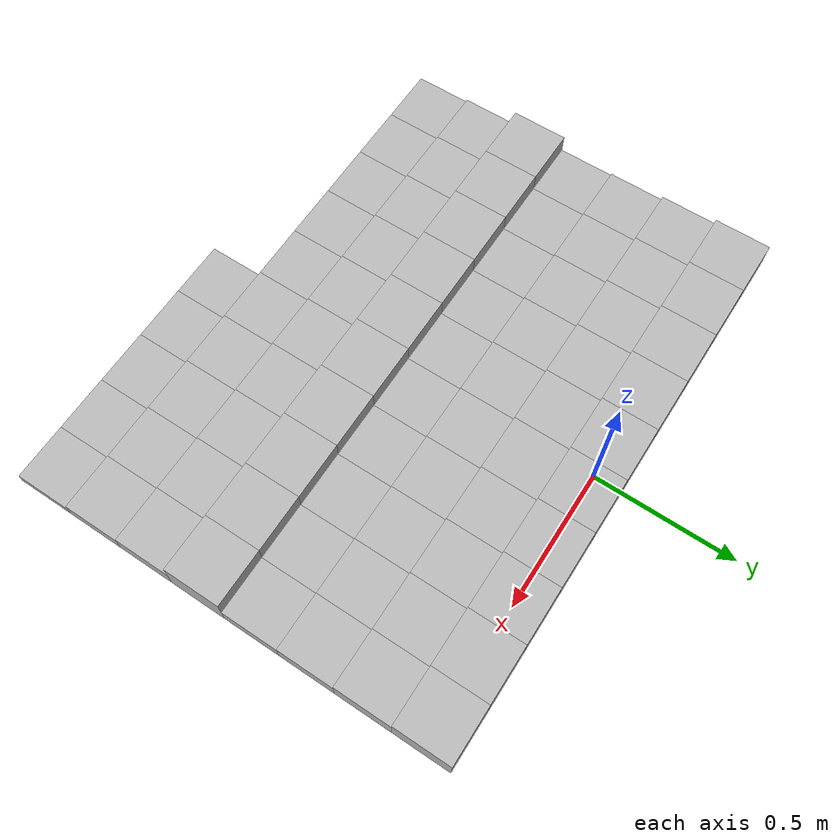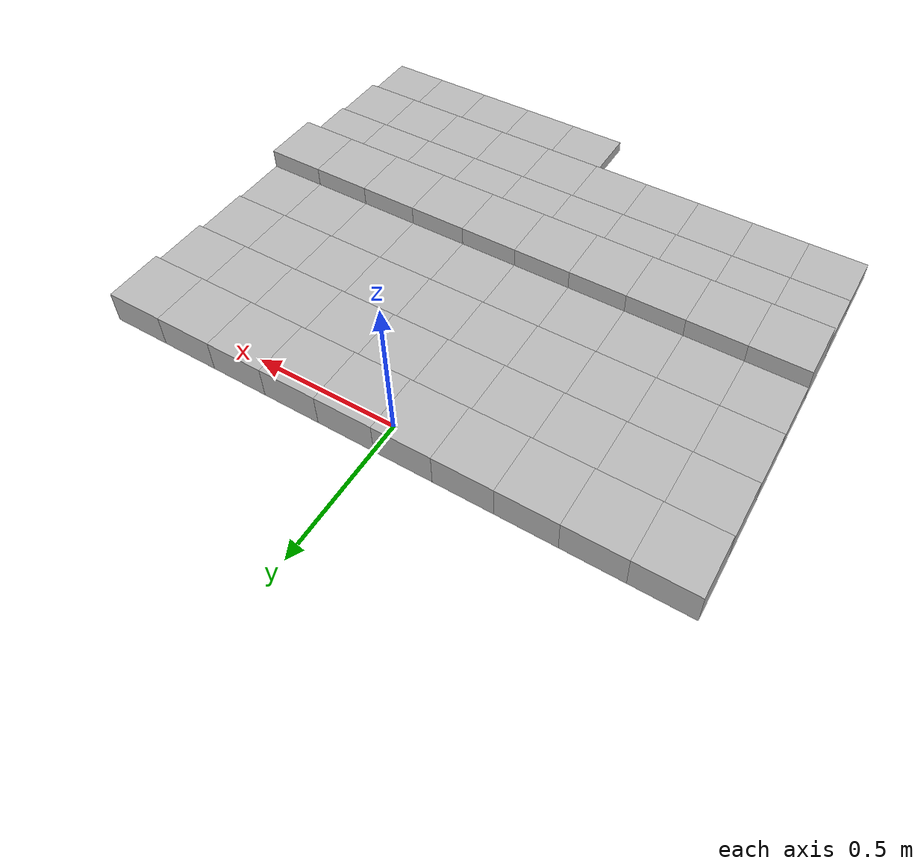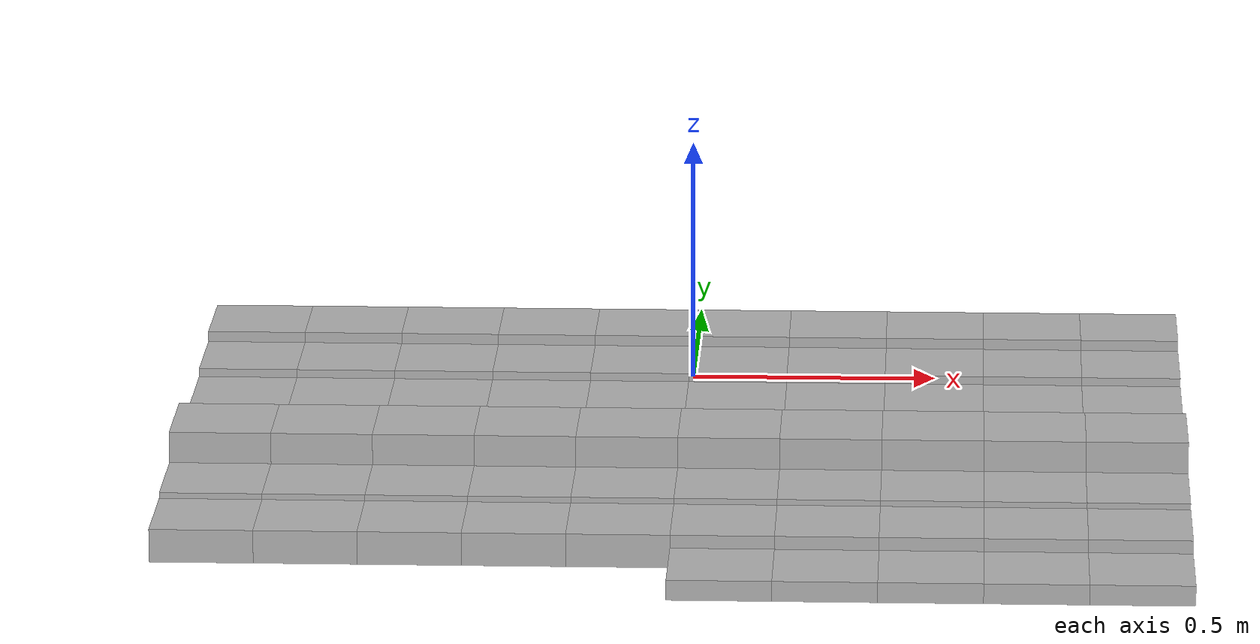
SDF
<sdf version="1.6">
 <model name="Terrain">
  <static>true</static>
  <link name="box_0_0">
   <pose>-0.9 0.0 0.05764848766 0 0 0</pose>
   <inertial>
    <mass>1.0</mass>
    <inertia><ixx>0.0</ixx><ixy>0.0</ixy><ixz>0.0</ixz><iyy>0.0</iyy><iyz>0.0</iyz><izz>0.0</izz></inertia>
   </inertial>
   <collision name="collision"><geometry><box><size>0.2 0.2 0.11529697532</size></box></geometry></collision>
   <visual name="visual"><geometry><box><size>0.2 0.2 0.11529697532</size></box></geometry></visual>
  </link>
  <link name="box_0_1">
   <pose>-0.7 0.0 0.05764848766 0 0 0</pose>
   <inertial>
    <mass>1.0</mass>
    <inertia><ixx>0.0</ixx><ixy>0.0</ixy><ixz>0.0</ixz><iyy>0.0</iyy><iyz>0.0</iyz><izz>0.0</izz></inertia>
   </inertial>
   <collision name="collision"><geometry><box><size>0.2 0.2 0.11529697532</size></box></geometry></collision>
   <visual name="visual"><geometry><box><size>0.2 0.2 0.11529697532</size></box></geometry></visual>
  </link>
  <link name="box_0_2">
   <pose>-0.5 0.0 0.05764848766 0 0 0</pose>
   <inertial>
    <mass>1.0</mass>
    <inertia><ixx>0.0</ixx><ixy>0.0</ixy><ixz>0.0</ixz><iyy>0.0</iyy><iyz>0.0</iyz><izz>0.0</izz></inertia>
   </inertial>
   <collision name="collision"><geometry><box><size>0.2 0.2 0.11529697532</size></box></geometry></collision>
   <visual name="visual"><geometry><box><size>0.2 0.2 0.11529697532</size></box></geometry></visual>
  </link>
  <link name="box_0_3">
   <pose>-0.3 0.0 0.05764848766 0 0 0</pose>
   <inertial>
    <mass>1.0</mass>
    <inertia><ixx>0.0</ixx><ixy>0.0</ixy><ixz>0.0</ixz><iyy>0.0</iyy><iyz>0.0</iyz><izz>0.0</izz></inertia>
   </inertial>
   <collision name="collision"><geometry><box><size>0.2 0.2 0.11529697532</size></box></geometry></collision>
   <visual name="visual"><geometry><box><size>0.2 0.2 0.11529697532</size></box></geometry></visual>
  </link>
  <link name="box_0_4">
   <pose>-0.1 0.0 0.05764848766 0 0 0</pose>
   <inertial>
    <mass>1.0</mass>
    <inertia><ixx>0.0</ixx><ixy>0.0</ixy><ixz>0.0</ixz><iyy>0.0</iyy><iyz>0.0</iyz><izz>0.0</izz></inertia>
   </inertial>
   <collision name="collision"><geometry><box><size>0.2 0.2 0.11529697532</size></box></geometry></collision>
   <visual name="visual"><geometry><box><size>0.2 0.2 0.11529697532</size></box></geometry></visual>
  </link>
  <link name="box_0_5">
   <pose>0.1 0.0 0.05764848766 0 0 0</pose>
   <inertial>
    <mass>1.0</mass>
    <inertia><ixx>0.0</ixx><ixy>0.0</ixy><ixz>0.0</ixz><iyy>0.0</iyy><iyz>0.0</iyz><izz>0.0</izz></inertia>
   </inertial>
   <collision name="collision"><geometry><box><size>0.2 0.2 0.11529697532</size></box></geometry></collision>
   <visual name="visual"><geometry><box><size>0.2 0.2 0.11529697532</size></box></geometry></visual>
  </link>
  <link name="box_0_6">
   <pose>0.3 0.0 0.05764848766 0 0 0</pose>
   <inertial>
    <mass>1.0</mass>
    <inertia><ixx>0.0</ixx><ixy>0.0</ixy><ixz>0.0</ixz><iyy>0.0</iyy><iyz>0.0</iyz><izz>0.0</izz></inertia>
   </inertial>
   <collision name="collision"><geometry><box><size>0.2 0.2 0.11529697532</size></box></geometry></collision>
   <visual name="visual"><geometry><box><size>0.2 0.2 0.11529697532</size></box></geometry></visual>
  </link>
  <link name="box_0_7">
   <pose>0.5 0.0 0.05764848766 0 0 0</pose>
   <inertial>
    <mass>1.0</mass>
    <inertia><ixx>0.0</ixx><ixy>0.0</ixy><ixz>0.0</ixz><iyy>0.0</iyy><iyz>0.0</iyz><izz>0.0</izz></inertia>
   </inertial>
   <collision name="collision"><geometry><box><size>0.2 0.2 0.11529697532</size></box></geometry></collision>
   <visual name="visual"><geometry><box><size>0.2 0.2 0.11529697532</size></box></geometry></visual>
  </link>
  <link name="box_0_8">
   <pose>0.7 0.0 0.05764848766 0 0 0</pose>
   <inertial>
    <mass>1.0</mass>
    <inertia><ixx>0.0</ixx><ixy>0.0</ixy><ixz>0.0</ixz><iyy>0.0</iyy><iyz>0.0</iyz><izz>0.0</izz></inertia>
   </inertial>
   <collision name="collision"><geometry><box><size>0.2 0.2 0.11529697532</size></box></geometry></collision>
   <visual name="visual"><geometry><box><size>0.2 0.2 0.11529697532</size></box></geometry></visual>
  </link>
  <link name="box_0_9">
   <pose>0.9 0.0 0.05764848766 0 0 0</pose>
   <inertial>
    <mass>1.0</mass>
    <inertia><ixx>0.0</ixx><ixy>0.0</ixy><ixz>0.0</ixz><iyy>0.0</iyy><iyz>0.0</iyz><izz>0.0</izz></inertia>
   </inertial>
   <collision name="collision"><geometry><box><size>0.2 0.2 0.11529697532</size></box></geometry></collision>
   <visual name="visual"><geometry><box><size>0.2 0.2 0.11529697532</size></box></geometry></visual>
  </link>
  <link name="box_1_0">
   <pose>-0.9 -0.2 0.0469387882455 0 0 0</pose>
   <inertial>
    <mass>1.0</mass>
    <inertia><ixx>0.0</ixx><ixy>0.0</ixy><ixz>0.0</ixz><iyy>0.0</iyy><iyz>0.0</iyz><izz>0.0</izz></inertia>
   </inertial>
   <collision name="collision"><geometry><box><size>0.2 0.2 0.093877576491</size></box></geometry></collision>
   <visual name="visual"><geometry><box><size>0.2 0.2 0.093877576491</size></box></geometry></visual>
  </link>
  <link name="box_1_1">
   <pose>-0.7 -0.2 0.0469387882455 0 0 0</pose>
   <inertial>
    <mass>1.0</mass>
    <inertia><ixx>0.0</ixx><ixy>0.0</ixy><ixz>0.0</ixz><iyy>0.0</iyy><iyz>0.0</iyz><izz>0.0</izz></inertia>
   </inertial>
   <collision name="collision"><geometry><box><size>0.2 0.2 0.093877576491</size></box></geometry></collision>
   <visual name="visual"><geometry><box><size>0.2 0.2 0.093877576491</size></box></geometry></visual>
  </link>
  <link name="box_1_2">
   <pose>-0.5 -0.2 0.0469387882455 0 0 0</pose>
   <inertial>
    <mass>1.0</mass>
    <inertia><ixx>0.0</ixx><ixy>0.0</ixy><ixz>0.0</ixz><iyy>0.0</iyy><iyz>0.0</iyz><izz>0.0</izz></inertia>
   </inertial>
   <collision name="collision"><geometry><box><size>0.2 0.2 0.093877576491</size></box></geometry></collision>
   <visual name="visual"><geometry><box><size>0.2 0.2 0.093877576491</size></box></geometry></visual>
  </link>
  <link name="box_1_3">
   <pose>-0.3 -0.2 0.0469387882455 0 0 0</pose>
   <inertial>
    <mass>1.0</mass>
    <inertia><ixx>0.0</ixx><ixy>0.0</ixy><ixz>0.0</ixz><iyy>0.0</iyy><iyz>0.0</iyz><izz>0.0</izz></inertia>
   </inertial>
   <collision name="collision"><geometry><box><size>0.2 0.2 0.093877576491</size></box></geometry></collision>
   <visual name="visual"><geometry><box><size>0.2 0.2 0.093877576491</size></box></geometry></visual>
  </link>
  <link name="box_1_4">
   <pose>-0.1 -0.2 0.0469387882455 0 0 0</pose>
   <inertial>
    <mass>1.0</mass>
    <inertia><ixx>0.0</ixx><ixy>0.0</ixy><ixz>0.0</ixz><iyy>0.0</iyy><iyz>0.0</iyz><izz>0.0</izz></inertia>
   </inertial>
   <collision name="collision"><geometry><box><size>0.2 0.2 0.093877576491</size></box></geometry></collision>
   <visual name="visual"><geometry><box><size>0.2 0.2 0.093877576491</size></box></geometry></visual>
  </link>
  <link name="box_1_5">
   <pose>0.1 -0.2 0.0469387882455 0 0 0</pose>
   <inertial>
    <mass>1.0</mass>
    <inertia><ixx>0.0</ixx><ixy>0.0</ixy><ixz>0.0</ixz><iyy>0.0</iyy><iyz>0.0</iyz><izz>0.0</izz></inertia>
   </inertial>
   <collision name="collision"><geometry><box><size>0.2 0.2 0.093877576491</size></box></geometry></collision>
   <visual name="visual"><geometry><box><size>0.2 0.2 0.093877576491</size></box></geometry></visual>
  </link>
  <link name="box_1_6">
   <pose>0.3 -0.2 0.0469387882455 0 0 0</pose>
   <inertial>
    <mass>1.0</mass>
    <inertia><ixx>0.0</ixx><ixy>0.0</ixy><ixz>0.0</ixz><iyy>0.0</iyy><iyz>0.0</iyz><izz>0.0</izz></inertia>
   </inertial>
   <collision name="collision"><geometry><box><size>0.2 0.2 0.093877576491</size></box></geometry></collision>
   <visual name="visual"><geometry><box><size>0.2 0.2 0.093877576491</size></box></geometry></visual>
  </link>
  <link name="box_1_7">
   <pose>0.5 -0.2 0.0469387882455 0 0 0</pose>
   <inertial>
    <mass>1.0</mass>
    <inertia><ixx>0.0</ixx><ixy>0.0</ixy><ixz>0.0</ixz><iyy>0.0</iyy><iyz>0.0</iyz><izz>0.0</izz></inertia>
   </inertial>
   <collision name="collision"><geometry><box><size>0.2 0.2 0.093877576491</size></box></geometry></collision>
   <visual name="visual"><geometry><box><size>0.2 0.2 0.093877576491</size></box></geometry></visual>
  </link>
  <link name="box_1_8">
   <pose>0.7 -0.2 0.0469387882455 0 0 0</pose>
   <inertial>
    <mass>1.0</mass>
    <inertia><ixx>0.0</ixx><ixy>0.0</ixy><ixz>0.0</ixz><iyy>0.0</iyy><iyz>0.0</iyz><izz>0.0</izz></inertia>
   </inertial>
   <collision name="collision"><geometry><box><size>0.2 0.2 0.093877576491</size></box></geometry></collision>
   <visual name="visual"><geometry><box><size>0.2 0.2 0.093877576491</size></box></geometry></visual>
  </link>
  <link name="box_1_9">
   <pose>0.9 -0.2 0.0469387882455 0 0 0</pose>
   <inertial>
    <mass>1.0</mass>
    <inertia><ixx>0.0</ixx><ixy>0.0</ixy><ixz>0.0</ixz><iyy>0.0</iyy><iyz>0.0</iyz><izz>0.0</izz></inertia>
   </inertial>
   <collision name="collision"><geometry><box><size>0.2 0.2 0.093877576491</size></box></geometry></collision>
   <visual name="visual"><geometry><box><size>0.2 0.2 0.093877576491</size></box></geometry></visual>
  </link>
  <link name="box_2_0">
   <pose>-0.9 -0.4 0.0385194099857 0 0 0</pose>
   <inertial>
    <mass>1.0</mass>
    <inertia><ixx>0.0</ixx><ixy>0.0</ixy><ixz>0.0</ixz><iyy>0.0</iyy><iyz>0.0</iyz><izz>0.0</izz></inertia>
   </inertial>
   <collision name="collision"><geometry><box><size>0.2 0.2 0.0770388199713</size></box></geometry></collision>
   <visual name="visual"><geometry><box><size>0.2 0.2 0.0770388199713</size></box></geometry></visual>
  </link>
  <link name="box_2_1">
   <pose>-0.7 -0.4 0.0385194099857 0 0 0</pose>
   <inertial>
    <mass>1.0</mass>
    <inertia><ixx>0.0</ixx><ixy>0.0</ixy><ixz>0.0</ixz><iyy>0.0</iyy><iyz>0.0</iyz><izz>0.0</izz></inertia>
   </inertial>
   <collision name="collision"><geometry><box><size>0.2 0.2 0.0770388199713</size></box></geometry></collision>
   <visual name="visual"><geometry><box><size>0.2 0.2 0.0770388199713</size></box></geometry></visual>
  </link>
  <link name="box_2_2">
   <pose>-0.5 -0.4 0.0385194099857 0 0 0</pose>
   <inertial>
    <mass>1.0</mass>
    <inertia><ixx>0.0</ixx><ixy>0.0</ixy><ixz>0.0</ixz><iyy>0.0</iyy><iyz>0.0</iyz><izz>0.0</izz></inertia>
   </inertial>
   <collision name="collision"><geometry><box><size>0.2 0.2 0.0770388199713</size></box></geometry></collision>
   <visual name="visual"><geometry><box><size>0.2 0.2 0.0770388199713</size></box></geometry></visual>
  </link>
  <link name="box_2_3">
   <pose>-0.3 -0.4 0.0385194099857 0 0 0</pose>
   <inertial>
    <mass>1.0</mass>
    <inertia><ixx>0.0</ixx><ixy>0.0</ixy><ixz>0.0</ixz><iyy>0.0</iyy><iyz>0.0</iyz><izz>0.0</izz></inertia>
   </inertial>
   <collision name="collision"><geometry><box><size>0.2 0.2 0.0770388199713</size></box></geometry></collision>
   <visual name="visual"><geometry><box><size>0.2 0.2 0.0770388199713</size></box></geometry></visual>
  </link>
  <link name="box_2_4">
   <pose>-0.1 -0.4 0.0385194099857 0 0 0</pose>
   <inertial>
    <mass>1.0</mass>
    <inertia><ixx>0.0</ixx><ixy>0.0</ixy><ixz>0.0</ixz><iyy>0.0</iyy><iyz>0.0</iyz><izz>0.0</izz></inertia>
   </inertial>
   <collision name="collision"><geometry><box><size>0.2 0.2 0.0770388199713</size></box></geometry></collision>
   <visual name="visual"><geometry><box><size>0.2 0.2 0.0770388199713</size></box></geometry></visual>
  </link>
  <link name="box_2_5">
   <pose>0.1 -0.4 0.0385194099857 0 0 0</pose>
   <inertial>
    <mass>1.0</mass>
    <inertia><ixx>0.0</ixx><ixy>0.0</ixy><ixz>0.0</ixz><iyy>0.0</iyy><iyz>0.0</iyz><izz>0.0</izz></inertia>
   </inertial>
   <collision name="collision"><geometry><box><size>0.2 0.2 0.0770388199713</size></box></geometry></collision>
   <visual name="visual"><geometry><box><size>0.2 0.2 0.0770388199713</size></box></geometry></visual>
  </link>
  <link name="box_2_6">
   <pose>0.3 -0.4 0.0385194099857 0 0 0</pose>
   <inertial>
    <mass>1.0</mass>
    <inertia><ixx>0.0</ixx><ixy>0.0</ixy><ixz>0.0</ixz><iyy>0.0</iyy><iyz>0.0</iyz><izz>0.0</izz></inertia>
   </inertial>
   <collision name="collision"><geometry><box><size>0.2 0.2 0.0770388199713</size></box></geometry></collision>
   <visual name="visual"><geometry><box><size>0.2 0.2 0.0770388199713</size></box></geometry></visual>
  </link>
  <link name="box_2_7">
   <pose>0.5 -0.4 0.0385194099857 0 0 0</pose>
   <inertial>
    <mass>1.0</mass>
    <inertia><ixx>0.0</ixx><ixy>0.0</ixy><ixz>0.0</ixz><iyy>0.0</iyy><iyz>0.0</iyz><izz>0.0</izz></inertia>
   </inertial>
   <collision name="collision"><geometry><box><size>0.2 0.2 0.0770388199713</size></box></geometry></collision>
   <visual name="visual"><geometry><box><size>0.2 0.2 0.0770388199713</size></box></geometry></visual>
  </link>
  <link name="box_2_8">
   <pose>0.7 -0.4 0.0385194099857 0 0 0</pose>
   <inertial>
    <mass>1.0</mass>
    <inertia><ixx>0.0</ixx><ixy>0.0</ixy><ixz>0.0</ixz><iyy>0.0</iyy><iyz>0.0</iyz><izz>0.0</izz></inertia>
   </inertial>
   <collision name="collision"><geometry><box><size>0.2 0.2 0.0770388199713</size></box></geometry></collision>
   <visual name="visual"><geometry><box><size>0.2 0.2 0.0770388199713</size></box></geometry></visual>
  </link>
  <link name="box_2_9">
   <pose>0.9 -0.4 0.0385194099857 0 0 0</pose>
   <inertial>
    <mass>1.0</mass>
    <inertia><ixx>0.0</ixx><ixy>0.0</ixy><ixz>0.0</ixz><iyy>0.0</iyy><iyz>0.0</iyz><izz>0.0</izz></inertia>
   </inertial>
   <collision name="collision"><geometry><box><size>0.2 0.2 0.0770388199713</size></box></geometry></collision>
   <visual name="visual"><geometry><box><size>0.2 0.2 0.0770388199713</size></box></geometry></visual>
  </link>
  <link name="box_3_0">
   <pose>-0.9 -0.6 0.0346947732556 0 0 0</pose>
   <inertial>
    <mass>1.0</mass>
    <inertia><ixx>0.0</ixx><ixy>0.0</ixy><ixz>0.0</ixz><iyy>0.0</iyy><iyz>0.0</iyz><izz>0.0</izz></inertia>
   </inertial>
   <collision name="collision"><geometry><box><size>0.2 0.2 0.0693895465111</size></box></geometry></collision>
   <visual name="visual"><geometry><box><size>0.2 0.2 0.0693895465111</size></box></geometry></visual>
  </link>
  <link name="box_3_1">
   <pose>-0.7 -0.6 0.0346947732556 0 0 0</pose>
   <inertial>
    <mass>1.0</mass>
    <inertia><ixx>0.0</ixx><ixy>0.0</ixy><ixz>0.0</ixz><iyy>0.0</iyy><iyz>0.0</iyz><izz>0.0</izz></inertia>
   </inertial>
   <collision name="collision"><geometry><box><size>0.2 0.2 0.0693895465111</size></box></geometry></collision>
   <visual name="visual"><geometry><box><size>0.2 0.2 0.0693895465111</size></box></geometry></visual>
  </link>
  <link name="box_3_2">
   <pose>-0.5 -0.6 0.0346947732556 0 0 0</pose>
   <inertial>
    <mass>1.0</mass>
    <inertia><ixx>0.0</ixx><ixy>0.0</ixy><ixz>0.0</ixz><iyy>0.0</iyy><iyz>0.0</iyz><izz>0.0</izz></inertia>
   </inertial>
   <collision name="collision"><geometry><box><size>0.2 0.2 0.0693895465111</size></box></geometry></collision>
   <visual name="visual"><geometry><box><size>0.2 0.2 0.0693895465111</size></box></geometry></visual>
  </link>
  <link name="box_3_3">
   <pose>-0.3 -0.6 0.0346947732556 0 0 0</pose>
   <inertial>
    <mass>1.0</mass>
    <inertia><ixx>0.0</ixx><ixy>0.0</ixy><ixz>0.0</ixz><iyy>0.0</iyy><iyz>0.0</iyz><izz>0.0</izz></inertia>
   </inertial>
   <collision name="collision"><geometry><box><size>0.2 0.2 0.0693895465111</size></box></geometry></collision>
   <visual name="visual"><geometry><box><size>0.2 0.2 0.0693895465111</size></box></geometry></visual>
  </link>
  <link name="box_3_4">
   <pose>-0.1 -0.6 0.0346947732556 0 0 0</pose>
   <inertial>
    <mass>1.0</mass>
    <inertia><ixx>0.0</ixx><ixy>0.0</ixy><ixz>0.0</ixz><iyy>0.0</iyy><iyz>0.0</iyz><izz>0.0</izz></inertia>
   </inertial>
   <collision name="collision"><geometry><box><size>0.2 0.2 0.0693895465111</size></box></geometry></collision>
   <visual name="visual"><geometry><box><size>0.2 0.2 0.0693895465111</size></box></geometry></visual>
  </link>
  <link name="box_3_5">
   <pose>0.1 -0.6 0.0346947732556 0 0 0</pose>
   <inertial>
    <mass>1.0</mass>
    <inertia><ixx>0.0</ixx><ixy>0.0</ixy><ixz>0.0</ixz><iyy>0.0</iyy><iyz>0.0</iyz><izz>0.0</izz></inertia>
   </inertial>
   <collision name="collision"><geometry><box><size>0.2 0.2 0.0693895465111</size></box></geometry></collision>
   <visual name="visual"><geometry><box><size>0.2 0.2 0.0693895465111</size></box></geometry></visual>
  </link>
  <link name="box_3_6">
   <pose>0.3 -0.6 0.0346947732556 0 0 0</pose>
   <inertial>
    <mass>1.0</mass>
    <inertia><ixx>0.0</ixx><ixy>0.0</ixy><ixz>0.0</ixz><iyy>0.0</iyy><iyz>0.0</iyz><izz>0.0</izz></inertia>
   </inertial>
   <collision name="collision"><geometry><box><size>0.2 0.2 0.0693895465111</size></box></geometry></collision>
   <visual name="visual"><geometry><box><size>0.2 0.2 0.0693895465111</size></box></geometry></visual>
  </link>
  <link name="box_3_7">
   <pose>0.5 -0.6 0.0346947732556 0 0 0</pose>
   <inertial>
    <mass>1.0</mass>
    <inertia><ixx>0.0</ixx><ixy>0.0</ixy><ixz>0.0</ixz><iyy>0.0</iyy><iyz>0.0</iyz><izz>0.0</izz></inertia>
   </inertial>
   <collision name="collision"><geometry><box><size>0.2 0.2 0.0693895465111</size></box></geometry></collision>
   <visual name="visual"><geometry><box><size>0.2 0.2 0.0693895465111</size></box></geometry></visual>
  </link>
  <link name="box_3_8">
   <pose>0.7 -0.6 0.0346947732556 0 0 0</pose>
   <inertial>
    <mass>1.0</mass>
    <inertia><ixx>0.0</ixx><ixy>0.0</ixy><ixz>0.0</ixz><iyy>0.0</iyy><iyz>0.0</iyz><izz>0.0</izz></inertia>
   </inertial>
   <collision name="collision"><geometry><box><size>0.2 0.2 0.0693895465111</size></box></geometry></collision>
   <visual name="visual"><geometry><box><size>0.2 0.2 0.0693895465111</size></box></geometry></visual>
  </link>
  <link name="box_3_9">
   <pose>0.9 -0.6 0.0346947732556 0 0 0</pose>
   <inertial>
    <mass>1.0</mass>
    <inertia><ixx>0.0</ixx><ixy>0.0</ixy><ixz>0.0</ixz><iyy>0.0</iyy><iyz>0.0</iyz><izz>0.0</izz></inertia>
   </inertial>
   <collision name="collision"><geometry><box><size>0.2 0.2 0.0693895465111</size></box></geometry></collision>
   <visual name="visual"><geometry><box><size>0.2 0.2 0.0693895465111</size></box></geometry></visual>
  </link>
  <link name="box_4_0">
   <pose>-0.9 -0.8 0.069619516451 0 0 0</pose>
   <inertial>
    <mass>1.0</mass>
    <inertia><ixx>0.0</ixx><ixy>0.0</ixy><ixz>0.0</ixz><iyy>0.0</iyy><iyz>0.0</iyz><izz>0.0</izz></inertia>
   </inertial>
   <collision name="collision"><geometry><box><size>0.2 0.2 0.139239032902</size></box></geometry></collision>
   <visual name="visual"><geometry><box><size>0.2 0.2 0.139239032902</size></box></geometry></visual>
  </link>
  <link name="box_4_1">
   <pose>-0.7 -0.8 0.069619516451 0 0 0</pose>
   <inertial>
    <mass>1.0</mass>
    <inertia><ixx>0.0</ixx><ixy>0.0</ixy><ixz>0.0</ixz><iyy>0.0</iyy><iyz>0.0</iyz><izz>0.0</izz></inertia>
   </inertial>
   <collision name="collision"><geometry><box><size>0.2 0.2 0.139239032902</size></box></geometry></collision>
   <visual name="visual"><geometry><box><size>0.2 0.2 0.139239032902</size></box></geometry></visual>
  </link>
  <link name="box_4_2">
   <pose>-0.5 -0.8 0.069619516451 0 0 0</pose>
   <inertial>
    <mass>1.0</mass>
    <inertia><ixx>0.0</ixx><ixy>0.0</ixy><ixz>0.0</ixz><iyy>0.0</iyy><iyz>0.0</iyz><izz>0.0</izz></inertia>
   </inertial>
   <collision name="collision"><geometry><box><size>0.2 0.2 0.139239032902</size></box></geometry></collision>
   <visual name="visual"><geometry><box><size>0.2 0.2 0.139239032902</size></box></geometry></visual>
  </link>
  <link name="box_4_3">
   <pose>-0.3 -0.8 0.069619516451 0 0 0</pose>
   <inertial>
    <mass>1.0</mass>
    <inertia><ixx>0.0</ixx><ixy>0.0</ixy><ixz>0.0</ixz><iyy>0.0</iyy><iyz>0.0</iyz><izz>0.0</izz></inertia>
   </inertial>
   <collision name="collision"><geometry><box><size>0.2 0.2 0.139239032902</size></box></geometry></collision>
   <visual name="visual"><geometry><box><size>0.2 0.2 0.139239032902</size></box></geometry></visual>
  </link>
  <link name="box_4_4">
   <pose>-0.1 -0.8 0.069619516451 0 0 0</pose>
   <inertial>
    <mass>1.0</mass>
    <inertia><ixx>0.0</ixx><ixy>0.0</ixy><ixz>0.0</ixz><iyy>0.0</iyy><iyz>0.0</iyz><izz>0.0</izz></inertia>
   </inertial>
   <collision name="collision"><geometry><box><size>0.2 0.2 0.139239032902</size></box></geometry></collision>
   <visual name="visual"><geometry><box><size>0.2 0.2 0.139239032902</size></box></geometry></visual>
  </link>
  <link name="box_4_5">
   <pose>0.1 -0.8 0.069619516451 0 0 0</pose>
   <inertial>
    <mass>1.0</mass>
    <inertia><ixx>0.0</ixx><ixy>0.0</ixy><ixz>0.0</ixz><iyy>0.0</iyy><iyz>0.0</iyz><izz>0.0</izz></inertia>
   </inertial>
   <collision name="collision"><geometry><box><size>0.2 0.2 0.139239032902</size></box></geometry></collision>
   <visual name="visual"><geometry><box><size>0.2 0.2 0.139239032902</size></box></geometry></visual>
  </link>
  <link name="box_4_6">
   <pose>0.3 -0.8 0.069619516451 0 0 0</pose>
   <inertial>
    <mass>1.0</mass>
    <inertia><ixx>0.0</ixx><ixy>0.0</ixy><ixz>0.0</ixz><iyy>0.0</iyy><iyz>0.0</iyz><izz>0.0</izz></inertia>
   </inertial>
   <collision name="collision"><geometry><box><size>0.2 0.2 0.139239032902</size></box></geometry></collision>
   <visual name="visual"><geometry><box><size>0.2 0.2 0.139239032902</size></box></geometry></visual>
  </link>
  <link name="box_4_7">
   <pose>0.5 -0.8 0.069619516451 0 0 0</pose>
   <inertial>
    <mass>1.0</mass>
    <inertia><ixx>0.0</ixx><ixy>0.0</ixy><ixz>0.0</ixz><iyy>0.0</iyy><iyz>0.0</iyz><izz>0.0</izz></inertia>
   </inertial>
   <collision name="collision"><geometry><box><size>0.2 0.2 0.139239032902</size></box></geometry></collision>
   <visual name="visual"><geometry><box><size>0.2 0.2 0.139239032902</size></box></geometry></visual>
  </link>
  <link name="box_4_8">
   <pose>0.7 -0.8 0.069619516451 0 0 0</pose>
   <inertial>
    <mass>1.0</mass>
    <inertia><ixx>0.0</ixx><ixy>0.0</ixy><ixz>0.0</ixz><iyy>0.0</iyy><iyz>0.0</iyz><izz>0.0</izz></inertia>
   </inertial>
   <collision name="collision"><geometry><box><size>0.2 0.2 0.139239032902</size></box></geometry></collision>
   <visual name="visual"><geometry><box><size>0.2 0.2 0.139239032902</size></box></geometry></visual>
  </link>
  <link name="box_4_9">
   <pose>0.9 -0.8 0.069619516451 0 0 0</pose>
   <inertial>
    <mass>1.0</mass>
    <inertia><ixx>0.0</ixx><ixy>0.0</ixy><ixz>0.0</ixz><iyy>0.0</iyy><iyz>0.0</iyz><izz>0.0</izz></inertia>
   </inertial>
   <collision name="collision"><geometry><box><size>0.2 0.2 0.139239032902</size></box></geometry></collision>
   <visual name="visual"><geometry><box><size>0.2 0.2 0.139239032902</size></box></geometry></visual>
  </link>
  <link name="box_5_0">
   <pose>-0.9 -1.0 0.0385689815721 0 0 0</pose>
   <inertial>
    <mass>1.0</mass>
    <inertia><ixx>0.0</ixx><ixy>0.0</ixy><ixz>0.0</ixz><iyy>0.0</iyy><iyz>0.0</iyz><izz>0.0</izz></inertia>
   </inertial>
   <collision name="collision"><geometry><box><size>0.2 0.2 0.0771379631443</size></box></geometry></collision>
   <visual name="visual"><geometry><box><size>0.2 0.2 0.0771379631443</size></box></geometry></visual>
  </link>
  <link name="box_5_1">
   <pose>-0.7 -1.0 0.0385689815721 0 0 0</pose>
   <inertial>
    <mass>1.0</mass>
    <inertia><ixx>0.0</ixx><ixy>0.0</ixy><ixz>0.0</ixz><iyy>0.0</iyy><iyz>0.0</iyz><izz>0.0</izz></inertia>
   </inertial>
   <collision name="collision"><geometry><box><size>0.2 0.2 0.0771379631443</size></box></geometry></collision>
   <visual name="visual"><geometry><box><size>0.2 0.2 0.0771379631443</size></box></geometry></visual>
  </link>
  <link name="box_5_2">
   <pose>-0.5 -1.0 0.0385689815721 0 0 0</pose>
   <inertial>
    <mass>1.0</mass>
    <inertia><ixx>0.0</ixx><ixy>0.0</ixy><ixz>0.0</ixz><iyy>0.0</iyy><iyz>0.0</iyz><izz>0.0</izz></inertia>
   </inertial>
   <collision name="collision"><geometry><box><size>0.2 0.2 0.0771379631443</size></box></geometry></collision>
   <visual name="visual"><geometry><box><size>0.2 0.2 0.0771379631443</size></box></geometry></visual>
  </link>
  <link name="box_5_3">
   <pose>-0.3 -1.0 0.0385689815721 0 0 0</pose>
   <inertial>
    <mass>1.0</mass>
    <inertia><ixx>0.0</ixx><ixy>0.0</ixy><ixz>0.0</ixz><iyy>0.0</iyy><iyz>0.0</iyz><izz>0.0</izz></inertia>
   </inertial>
   <collision name="collision"><geometry><box><size>0.2 0.2 0.0771379631443</size></box></geometry></collision>
   <visual name="visual"><geometry><box><size>0.2 0.2 0.0771379631443</size></box></geometry></visual>
  </link>
  <link name="box_5_4">
   <pose>-0.1 -1.0 0.0385689815721 0 0 0</pose>
   <inertial>
    <mass>1.0</mass>
    <inertia><ixx>0.0</ixx><ixy>0.0</ixy><ixz>0.0</ixz><iyy>0.0</iyy><iyz>0.0</iyz><izz>0.0</izz></inertia>
   </inertial>
   <collision name="collision"><geometry><box><size>0.2 0.2 0.0771379631443</size></box></geometry></collision>
   <visual name="visual"><geometry><box><size>0.2 0.2 0.0771379631443</size></box></geometry></visual>
  </link>
  <link name="box_5_5">
   <pose>0.1 -1.0 0.0385689815721 0 0 0</pose>
   <inertial>
    <mass>1.0</mass>
    <inertia><ixx>0.0</ixx><ixy>0.0</ixy><ixz>0.0</ixz><iyy>0.0</iyy><iyz>0.0</iyz><izz>0.0</izz></inertia>
   </inertial>
   <collision name="collision"><geometry><box><size>0.2 0.2 0.0771379631443</size></box></geometry></collision>
   <visual name="visual"><geometry><box><size>0.2 0.2 0.0771379631443</size></box></geometry></visual>
  </link>
  <link name="box_5_6">
   <pose>0.3 -1.0 0.0385689815721 0 0 0</pose>
   <inertial>
    <mass>1.0</mass>
    <inertia><ixx>0.0</ixx><ixy>0.0</ixy><ixz>0.0</ixz><iyy>0.0</iyy><iyz>0.0</iyz><izz>0.0</izz></inertia>
   </inertial>
   <collision name="collision"><geometry><box><size>0.2 0.2 0.0771379631443</size></box></geometry></collision>
   <visual name="visual"><geometry><box><size>0.2 0.2 0.0771379631443</size></box></geometry></visual>
  </link>
  <link name="box_5_7">
   <pose>0.5 -1.0 0.0385689815721 0 0 0</pose>
   <inertial>
    <mass>1.0</mass>
    <inertia><ixx>0.0</ixx><ixy>0.0</ixy><ixz>0.0</ixz><iyy>0.0</iyy><iyz>0.0</iyz><izz>0.0</izz></inertia>
   </inertial>
   <collision name="collision"><geometry><box><size>0.2 0.2 0.0771379631443</size></box></geometry></collision>
   <visual name="visual"><geometry><box><size>0.2 0.2 0.0771379631443</size></box></geometry></visual>
  </link>
  <link name="box_5_8">
   <pose>0.7 -1.0 0.0385689815721 0 0 0</pose>
   <inertial>
    <mass>1.0</mass>
    <inertia><ixx>0.0</ixx><ixy>0.0</ixy><ixz>0.0</ixz><iyy>0.0</iyy><iyz>0.0</iyz><izz>0.0</izz></inertia>
   </inertial>
   <collision name="collision"><geometry><box><size>0.2 0.2 0.0771379631443</size></box></geometry></collision>
   <visual name="visual"><geometry><box><size>0.2 0.2 0.0771379631443</size></box></geometry></visual>
  </link>
  <link name="box_5_9">
   <pose>0.9 -1.0 0.0385689815721 0 0 0</pose>
   <inertial>
    <mass>1.0</mass>
    <inertia><ixx>0.0</ixx><ixy>0.0</ixy><ixz>0.0</ixz><iyy>0.0</iyy><iyz>0.0</iyz><izz>0.0</izz></inertia>
   </inertial>
   <collision name="collision"><geometry><box><size>0.2 0.2 0.0771379631443</size></box></geometry></collision>
   <visual name="visual"><geometry><box><size>0.2 0.2 0.0771379631443</size></box></geometry></visual>
  </link>
  <link name="box_6_0">
   <pose>-0.9 -1.2 0.032791380425 0 0 0</pose>
   <inertial>
    <mass>1.0</mass>
    <inertia><ixx>0.0</ixx><ixy>0.0</ixy><ixz>0.0</ixz><iyy>0.0</iyy><iyz>0.0</iyz><izz>0.0</izz></inertia>
   </inertial>
   <collision name="collision"><geometry><box><size>0.2 0.2 0.0655827608499</size></box></geometry></collision>
   <visual name="visual"><geometry><box><size>0.2 0.2 0.0655827608499</size></box></geometry></visual>
  </link>
  <link name="box_6_1">
   <pose>-0.7 -1.2 0.032791380425 0 0 0</pose>
   <inertial>
    <mass>1.0</mass>
    <inertia><ixx>0.0</ixx><ixy>0.0</ixy><ixz>0.0</ixz><iyy>0.0</iyy><iyz>0.0</iyz><izz>0.0</izz></inertia>
   </inertial>
   <collision name="collision"><geometry><box><size>0.2 0.2 0.0655827608499</size></box></geometry></collision>
   <visual name="visual"><geometry><box><size>0.2 0.2 0.0655827608499</size></box></geometry></visual>
  </link>
  <link name="box_6_2">
   <pose>-0.5 -1.2 0.032791380425 0 0 0</pose>
   <inertial>
    <mass>1.0</mass>
    <inertia><ixx>0.0</ixx><ixy>0.0</ixy><ixz>0.0</ixz><iyy>0.0</iyy><iyz>0.0</iyz><izz>0.0</izz></inertia>
   </inertial>
   <collision name="collision"><geometry><box><size>0.2 0.2 0.0655827608499</size></box></geometry></collision>
   <visual name="visual"><geometry><box><size>0.2 0.2 0.0655827608499</size></box></geometry></visual>
  </link>
  <link name="box_6_3">
   <pose>-0.3 -1.2 0.032791380425 0 0 0</pose>
   <inertial>
    <mass>1.0</mass>
    <inertia><ixx>0.0</ixx><ixy>0.0</ixy><ixz>0.0</ixz><iyy>0.0</iyy><iyz>0.0</iyz><izz>0.0</izz></inertia>
   </inertial>
   <collision name="collision"><geometry><box><size>0.2 0.2 0.0655827608499</size></box></geometry></collision>
   <visual name="visual"><geometry><box><size>0.2 0.2 0.0655827608499</size></box></geometry></visual>
  </link>
  <link name="box_6_4">
   <pose>-0.1 -1.2 0.032791380425 0 0 0</pose>
   <inertial>
    <mass>1.0</mass>
    <inertia><ixx>0.0</ixx><ixy>0.0</ixy><ixz>0.0</ixz><iyy>0.0</iyy><iyz>0.0</iyz><izz>0.0</izz></inertia>
   </inertial>
   <collision name="collision"><geometry><box><size>0.2 0.2 0.0655827608499</size></box></geometry></collision>
   <visual name="visual"><geometry><box><size>0.2 0.2 0.0655827608499</size></box></geometry></visual>
  </link>
  <link name="box_6_5">
   <pose>0.1 -1.2 0.032791380425 0 0 0</pose>
   <inertial>
    <mass>1.0</mass>
    <inertia><ixx>0.0</ixx><ixy>0.0</ixy><ixz>0.0</ixz><iyy>0.0</iyy><iyz>0.0</iyz><izz>0.0</izz></inertia>
   </inertial>
   <collision name="collision"><geometry><box><size>0.2 0.2 0.0655827608499</size></box></geometry></collision>
   <visual name="visual"><geometry><box><size>0.2 0.2 0.0655827608499</size></box></geometry></visual>
  </link>
  <link name="box_6_6">
   <pose>0.3 -1.2 0.032791380425 0 0 0</pose>
   <inertial>
    <mass>1.0</mass>
    <inertia><ixx>0.0</ixx><ixy>0.0</ixy><ixz>0.0</ixz><iyy>0.0</iyy><iyz>0.0</iyz><izz>0.0</izz></inertia>
   </inertial>
   <collision name="collision"><geometry><box><size>0.2 0.2 0.0655827608499</size></box></geometry></collision>
   <visual name="visual"><geometry><box><size>0.2 0.2 0.0655827608499</size></box></geometry></visual>
  </link>
  <link name="box_6_7">
   <pose>0.5 -1.2 0.032791380425 0 0 0</pose>
   <inertial>
    <mass>1.0</mass>
    <inertia><ixx>0.0</ixx><ixy>0.0</ixy><ixz>0.0</ixz><iyy>0.0</iyy><iyz>0.0</iyz><izz>0.0</izz></inertia>
   </inertial>
   <collision name="collision"><geometry><box><size>0.2 0.2 0.0655827608499</size></box></geometry></collision>
   <visual name="visual"><geometry><box><size>0.2 0.2 0.0655827608499</size></box></geometry></visual>
  </link>
  <link name="box_6_8">
   <pose>0.7 -1.2 0.032791380425 0 0 0</pose>
   <inertial>
    <mass>1.0</mass>
    <inertia><ixx>0.0</ixx><ixy>0.0</ixy><ixz>0.0</ixz><iyy>0.0</iyy><iyz>0.0</iyz><izz>0.0</izz></inertia>
   </inertial>
   <collision name="collision"><geometry><box><size>0.2 0.2 0.0655827608499</size></box></geometry></collision>
   <visual name="visual"><geometry><box><size>0.2 0.2 0.0655827608499</size></box></geometry></visual>
  </link>
  <link name="box_6_9">
   <pose>0.9 -1.2 0.032791380425 0 0 0</pose>
   <inertial>
    <mass>1.0</mass>
    <inertia><ixx>0.0</ixx><ixy>0.0</ixy><ixz>0.0</ixz><iyy>0.0</iyy><iyz>0.0</iyz><izz>0.0</izz></inertia>
   </inertial>
   <collision name="collision"><geometry><box><size>0.2 0.2 0.0655827608499</size></box></geometry></collision>
   <visual name="visual"><geometry><box><size>0.2 0.2 0.0655827608499</size></box></geometry></visual>
  </link>
  <link name="box_7_5">
   <pose>0.1 -1.4 0.0198817768 0 0 0</pose>
   <inertial>
    <mass>1.0</mass>
    <inertia><ixx>0.0</ixx><ixy>0.0</ixy><ixz>0.0</ixz><iyy>0.0</iyy><iyz>0.0</iyz><izz>0.0</izz></inertia>
   </inertial>
   <collision name="collision"><geometry><box><size>0.2 0.2 0.0397635536</size></box></geometry></collision>
   <visual name="visual"><geometry><box><size>0.2 0.2 0.0397635536</size></box></geometry></visual>
  </link>
  <link name="box_7_6">
   <pose>0.3 -1.4 0.0198817768 0 0 0</pose>
   <inertial>
    <mass>1.0</mass>
    <inertia><ixx>0.0</ixx><ixy>0.0</ixy><ixz>0.0</ixz><iyy>0.0</iyy><iyz>0.0</iyz><izz>0.0</izz></inertia>
   </inertial>
   <collision name="collision"><geometry><box><size>0.2 0.2 0.0397635536</size></box></geometry></collision>
   <visual name="visual"><geometry><box><size>0.2 0.2 0.0397635536</size></box></geometry></visual>
  </link>
  <link name="box_7_7">
   <pose>0.5 -1.4 0.0198817768 0 0 0</pose>
   <inertial>
    <mass>1.0</mass>
    <inertia><ixx>0.0</ixx><ixy>0.0</ixy><ixz>0.0</ixz><iyy>0.0</iyy><iyz>0.0</iyz><izz>0.0</izz></inertia>
   </inertial>
   <collision name="collision"><geometry><box><size>0.2 0.2 0.0397635536</size></box></geometry></collision>
   <visual name="visual"><geometry><box><size>0.2 0.2 0.0397635536</size></box></geometry></visual>
  </link>
  <link name="box_7_8">
   <pose>0.7 -1.4 0.0198817768 0 0 0</pose>
   <inertial>
    <mass>1.0</mass>
    <inertia><ixx>0.0</ixx><ixy>0.0</ixy><ixz>0.0</ixz><iyy>0.0</iyy><iyz>0.0</iyz><izz>0.0</izz></inertia>
   </inertial>
   <collision name="collision"><geometry><box><size>0.2 0.2 0.0397635536</size></box></geometry></collision>
   <visual name="visual"><geometry><box><size>0.2 0.2 0.0397635536</size></box></geometry></visual>
  </link>
  <link name="box_7_9">
   <pose>0.9 -1.4 0.0198817768 0 0 0</pose>
   <inertial>
    <mass>1.0</mass>
    <inertia><ixx>0.0</ixx><ixy>0.0</ixy><ixz>0.0</ixz><iyy>0.0</iyy><iyz>0.0</iyz><izz>0.0</izz></inertia>
   </inertial>
   <collision name="collision"><geometry><box><size>0.2 0.2 0.0397635536</size></box></geometry></collision>
   <visual name="visual"><geometry><box><size>0.2 0.2 0.0397635536</size></box></geometry></visual>
  </link>
 </model>
</sdf>
